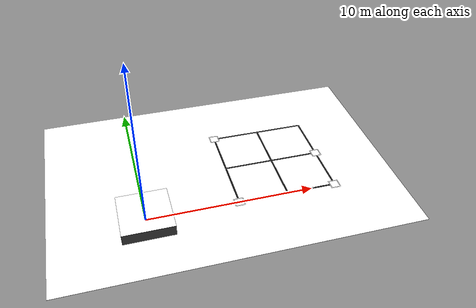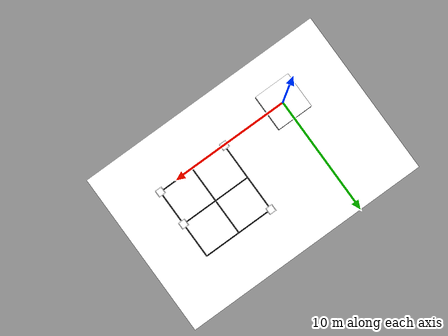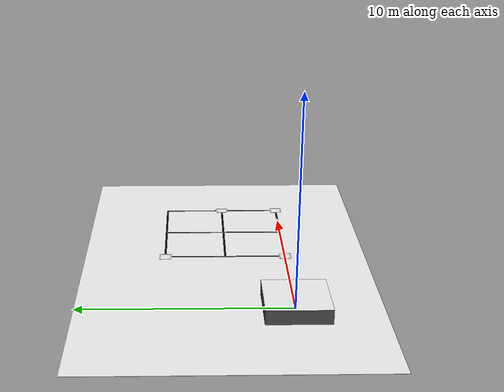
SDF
<sdf version="1.9">
 <world name="grid_arena_test_world">
  <physics name="1ms" type="ignore">
   <max_step_size>0.001</max_step_size>
   <real_time_factor>1.0</real_time_factor>
  </physics>
  <plugin filename="gz-sim-physics-system" name="gz::sim::systems::Physics"/>
  <plugin filename="gz-sim-sensors-system" name="gz::sim::systems::Sensors">
   <render_engine>ogre2</render_engine>
  </plugin>
  <plugin filename="gz-sim-user-commands-system" name="gz::sim::systems::UserCommands"/>
  <plugin filename="gz-sim-scene-broadcaster-system" name="gz::sim::systems::SceneBroadcaster"/>
  <plugin filename="gz-sim-imu-system" name="gz::sim::systems::Imu"/>
  <plugin filename="gz-sim-navsat-system" name="gz::sim::systems::NavSat"/>
  <scene><ambient>1.0 1.0 1.0</ambient><background>1.0 1.0 1.0</background><grid>false</grid></scene>
  <spherical_coordinates>
   <latitude_deg>-35.363262</latitude_deg>
   <longitude_deg>149.165237</longitude_deg>
   <elevation>584</elevation>
   <heading_deg>0</heading_deg>
   <surface_model>EARTH_WGS84</surface_model>
  </spherical_coordinates>
  <light type="directional" name="sun">
   <pose>0 0 10 0 0 0</pose>
   <diffuse>0.9 0.9 0.9 1</diffuse>
   <specular>0.6 0.6 0.6 1</specular>
   <attenuation>
    <range>1000</range>
    <constant>0.9</constant>
    <linear>0.01</linear>
    <quadratic>0.001</quadratic>
   </attenuation>
   <direction>-0.4 0.2 -0.9</direction>
  </light>
  <model name="astroquad_grid_edge_case_course">
   <static>true</static>
   <link name="course_link">
    <collision name="ground_collision">
     <pose>5.0 3.0 -0.005 0 0 0</pose>
     <geometry><box><size>21.0 14.0 0.01</size></box></geometry>
    </collision>
    <visual name="ground_visual">
     <pose>5.0 3.0 -0.005 0 0 0</pose>
     <geometry><box><size>21.0 14.0 0.01</size></box></geometry>
     <material><ambient>1 1 1 1</ambient><diffuse>1 1 1 1</diffuse><specular>0.03 0.03 0.03 1</specular></material>
    </visual>
    <collision name="vertiport_box_collision">
     <pose>0 0 0.35 0 0 0</pose>
     <geometry><box><size>3.0 3.0 0.7</size></box></geometry>
    </collision>
    <visual name="vertiport_box_visual">
     <pose>0 0 0.35 0 0 0</pose>
     <geometry><box><size>3.0 3.0 0.7</size></box></geometry>
     <material>
      <ambient>0.25 0.25 0.25 1</ambient>
      <diffuse>0.25 0.25 0.25 1</diffuse>
      <specular>0.05 0.05 0.05 1</specular>
     </material>
    </visual>
    <visual name="vertiport_top_texture">
     <pose degrees="true">0 0 0.701 0 0 0</pose>
     <geometry><plane><normal>0 0 1</normal><size>3.0 3.0</size></plane></geometry>
     <material>
      <ambient>1 1 1 1</ambient>
      <diffuse>1 1 1 1</diffuse>
      <specular>0 0 0 1</specular>
      <pbr>
       <metal>
        <albedo_map>model://astroquad_grid_course/materials/textures/vertiport.png</albedo_map>
        <roughness>1.0</roughness>
        <metalness>0.0</metalness>
       </metal>
      </pbr>
     </material>
    </visual>
    <visual name="grid_line_y0">
     <pose>8.5 0.0 0.006 0 0 0</pose>
     <geometry><box><size>6.0 0.10 0.008</size></box></geometry>
     <material><ambient>0 0 0 1</ambient><diffuse>0 0 0 1</diffuse><emissive>0 0 0 1</emissive></material>
    </visual>
    <visual name="grid_line_y3">
     <pose>8.5 3.0 0.006 0 0 0</pose>
     <geometry><box><size>6.0 0.10 0.008</size></box></geometry>
     <material><ambient>0 0 0 1</ambient><diffuse>0 0 0 1</diffuse><emissive>0 0 0 1</emissive></material>
    </visual>
    <visual name="grid_line_y6">
     <pose>8.5 6.0 0.006 0 0 0</pose>
     <geometry><box><size>6.0 0.10 0.008</size></box></geometry>
     <material><ambient>0 0 0 1</ambient><diffuse>0 0 0 1</diffuse><emissive>0 0 0 1</emissive></material>
    </visual>
    <visual name="grid_line_x5_5">
     <pose>5.5 3.0 0.006 0 0 0</pose>
     <geometry><box><size>0.10 6.0 0.008</size></box></geometry>
     <material><ambient>0 0 0 1</ambient><diffuse>0 0 0 1</diffuse><emissive>0 0 0 1</emissive></material>
    </visual>
    <visual name="grid_line_x8_5">
     <pose>8.5 3.0 0.006 0 0 0</pose>
     <geometry><box><size>0.10 6.0 0.008</size></box></geometry>
     <material><ambient>0 0 0 1</ambient><diffuse>0 0 0 1</diffuse><emissive>0 0 0 1</emissive></material>
    </visual>
    <visual name="grid_line_x11_5">
     <pose>11.5 3.0 0.006 0 0 0</pose>
     <geometry><box><size>0.10 6.0 0.008</size></box></geometry>
     <material><ambient>0 0 0 1</ambient><diffuse>0 0 0 1</diffuse><emissive>0 0 0 1</emissive></material>
    </visual>
    <visual name="marker_id3_white_pad">
     <pose>5.5 0.0 0.011 0 0 0</pose>
     <geometry><plane><normal>0 0 1</normal><size>0.60 0.60</size></plane></geometry>
     <material><ambient>1 1 1 1</ambient><diffuse>1 1 1 1</diffuse><specular>0 0 0 1</specular></material>
    </visual>
    <visual name="marker_id3_texture">
     <pose>5.5 0.0 0.012 0 0 0</pose>
     <geometry><plane><normal>0 0 1</normal><size>0.50 0.50</size></plane></geometry>
     <material>
      <ambient>1 1 1 1</ambient>
      <diffuse>1 1 1 1</diffuse>
      <specular>0 0 0 1</specular>
      <pbr>
       <metal>
        <albedo_map>model://astroquad_grid_course/materials/textures/aruco_id3.png</albedo_map>
        <roughness>1.0</roughness>
        <metalness>0.0</metalness>
       </metal>
      </pbr>
     </material>
    </visual>
    <visual name="marker_id2_white_pad">
     <pose>11.5 0.0 0.011 0 0 0</pose>
     <geometry><plane><normal>0 0 1</normal><size>0.60 0.60</size></plane></geometry>
     <material><ambient>1 1 1 1</ambient><diffuse>1 1 1 1</diffuse><specular>0 0 0 1</specular></material>
    </visual>
    <visual name="marker_id2_texture">
     <pose>11.5 0.0 0.012 0 0 0</pose>
     <geometry><plane><normal>0 0 1</normal><size>0.50 0.50</size></plane></geometry>
     <material>
      <ambient>1 1 1 1</ambient>
      <diffuse>1 1 1 1</diffuse>
      <specular>0 0 0 1</specular>
      <pbr>
       <metal>
        <albedo_map>model://astroquad_grid_course/materials/textures/aruco_id2.png</albedo_map>
        <roughness>1.0</roughness>
        <metalness>0.0</metalness>
       </metal>
      </pbr>
     </material>
    </visual>
    <visual name="marker_id4_white_pad">
     <pose>11.5 3.0 0.011 0 0 0</pose>
     <geometry><plane><normal>0 0 1</normal><size>0.60 0.60</size></plane></geometry>
     <material><ambient>1 1 1 1</ambient><diffuse>1 1 1 1</diffuse><specular>0 0 0 1</specular></material>
    </visual>
    <visual name="marker_id4_texture">
     <pose>11.5 3.0 0.012 0 0 0</pose>
     <geometry><plane><normal>0 0 1</normal><size>0.50 0.50</size></plane></geometry>
     <material>
      <ambient>1 1 1 1</ambient>
      <diffuse>1 1 1 1</diffuse>
      <specular>0 0 0 1</specular>
      <pbr>
       <metal>
        <albedo_map>model://astroquad_grid_course/materials/textures/aruco_id4.png</albedo_map>
        <roughness>1.0</roughness>
        <metalness>0.0</metalness>
       </metal>
      </pbr>
     </material>
    </visual>
    <visual name="marker_id1_white_pad">
     <pose>5.5 6.0 0.011 0 0 0</pose>
     <geometry><plane><normal>0 0 1</normal><size>0.60 0.60</size></plane></geometry>
     <material><ambient>1 1 1 1</ambient><diffuse>1 1 1 1</diffuse><specular>0 0 0 1</specular></material>
    </visual>
    <visual name="marker_id1_texture">
     <pose>5.5 6.0 0.012 0 0 0</pose>
     <geometry><plane><normal>0 0 1</normal><size>0.50 0.50</size></plane></geometry>
     <material>
      <ambient>1 1 1 1</ambient>
      <diffuse>1 1 1 1</diffuse>
      <specular>0 0 0 1</specular>
      <pbr>
       <metal>
        <albedo_map>model://astroquad_grid_course/materials/textures/aruco_id1.png</albedo_map>
        <roughness>1.0</roughness>
        <metalness>0.0</metalness>
       </metal>
      </pbr>
     </material>
    </visual>
   </link>
  </model>
 </world>
</sdf>
